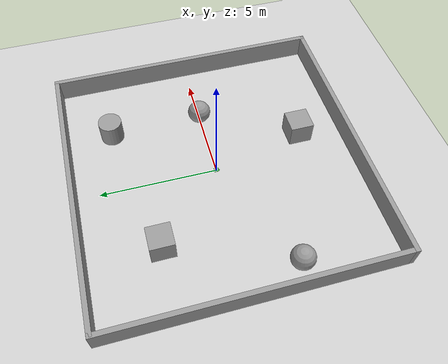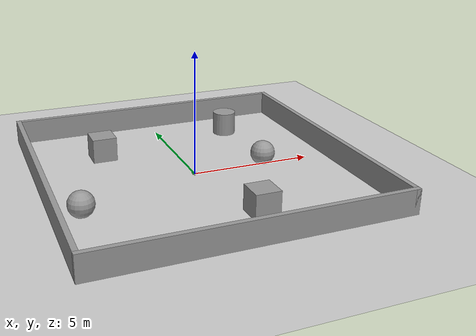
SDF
<sdf version="1.4">
 <world name="default">
  <light name="sun" type="directional">
   <pose>0 0 10 0 -0 0</pose>
   <diffuse>0.8 0.8 0.8 1</diffuse>
   <specular>0.2 0.2 0.2 1</specular>
   <attenuation>
    <range>1000</range>
    <constant>0.9</constant>
    <linear>0.01</linear>
    <quadratic>0.001</quadratic>
   </attenuation>
   <direction>-0.5 0.1 -0.9</direction>
  </light>
  <model name="ground_plane">
   <static>1</static>
   <link name="link">
    <collision name="collision">
     <geometry><plane><normal>0 0 1</normal><size>100 100</size></plane></geometry>
     <surface><friction><ode><mu>100</mu><mu2>50</mu2></ode></friction></surface>
    </collision>
    <visual name="visual">
     <cast_shadows>0</cast_shadows>
     <geometry><plane><normal>0 0 1</normal><size>100 100</size></plane></geometry>
     <material>
      <script><uri>file://media/materials/scripts/gazebo.material</uri><name>Gazebo/Grey</name></script>
     </material>
    </visual>
    <velocity_decay><linear>0</linear><angular>0</angular></velocity_decay>
   </link>
  </model>
  <physics type="ode">
   <max_step_size>0.001</max_step_size>
   <real_time_factor>1</real_time_factor>
   <real_time_update_rate>1000</real_time_update_rate>
   <gravity>0 0 -9.8</gravity>
  </physics>
  <scene><ambient>0.4 0.4 0.4 1</ambient><background>0.7 0.7 0.7 1</background><shadows>1</shadows></scene>
  <spherical_coordinates>
   <surface_model>EARTH_WGS84</surface_model>
   <latitude_deg>0</latitude_deg>
   <longitude_deg>0</longitude_deg>
   <elevation>0</elevation>
   <heading_deg>0</heading_deg>
  </spherical_coordinates>
  <model name="firebird">
   <link name="base_link">
    <inertial>
     <pose>0.00301435 0 0.0010688 0 -0 0</pose>
     <mass>1.045</mass>
     <inertia>
      <ixx>0.0294015</ixx>
      <ixy>0</ixy>
      <ixz>-7.48163e-05</ixz>
      <iyy>0.0296125</iyy>
      <iyz>0</iyz>
      <izz>0.058461</izz>
     </inertia>
    </inertial>
    <collision name="base_link_collision">
     <pose>0 0 0.0375 0 -0 0</pose>
     <geometry><box><size>0.2 0.2 0.01</size></box></geometry>
    </collision>
    <collision name="base_link_collision_caster_link">
     <pose>0.07 0 0.02482 0 -0 0</pose>
     <geometry><cylinder><length>0.01536</length><radius>0.01214</radius></cylinder></geometry>
    </collision>
    <visual name="base_link_visual">
     <pose>0 0 0.0375 0 -0 0</pose>
     <geometry><box><size>0.2 0.2 0.01</size></box></geometry>
     <material><script><name>Gazebo/Green</name><uri>__default__</uri></script></material>
    </visual>
    <visual name="base_link_visual_caster_link">
     <pose>0.07 0 0.02482 0 -0 0</pose>
     <geometry><cylinder><length>0.01536</length><radius>0.01214</radius></cylinder></geometry>
    </visual>
    <visual name="base_link_visual_sharp1">
     <pose>0.07 0 0.050835 0 -0 0</pose>
     <geometry><box><size>0.03333 0.03333 0.01667</size></box></geometry>
     <material><script><name>Gazebo/Blue</name><uri>__default__</uri></script></material>
    </visual>
    <velocity_decay><linear>0</linear><angular>0</angular></velocity_decay>
    <velocity_decay><linear>0</linear><angular>0</angular></velocity_decay>
    <velocity_decay><linear>0</linear><angular>0</angular></velocity_decay>
    <sensor name="sharp_sensor1" type="ray">
     <visualize>1</visualize>
     <update_rate>100</update_rate>
     <ray>
      <scan>
       <horizontal>
        <samples>700</samples>
        <resolution>1</resolution>
        <min_angle>-2.0598</min_angle>
        <max_angle>2.0598</max_angle>
       </horizontal>
      </scan>
      <range><min>0.1</min><max>30</max><resolution>0.01</resolution></range>
     </ray>
     <plugin name="gazebo_ros_head_hokuyo_controller" filename="libgazebo_ros_laser.so">
      <topicName>/scan1</topicName>
      <frameName>sharp1</frameName>
      <robotNamespace>/</robotNamespace>
     </plugin>
     <pose>0.07 0 0.050835 0 -0 0</pose>
    </sensor>
   </link>
   <link name="caster_front_link">
    <pose>0.07 0 0.01714 -1.5708 0 0</pose>
    <inertial>
     <mass>0.02</mass>
     <inertia><ixx>0.001</ixx><ixy>0</ixy><ixz>0</ixz><iyy>0.001</iyy><iyz>0</iyz><izz>0.001</izz></inertia>
    </inertial>
    <collision name="caster_front_link_collision">
     <pose>0 0 0 1.5708 -0 0</pose>
     <geometry><sphere><radius>0.01214</radius></sphere></geometry>
    </collision>
    <visual name="caster_front_link_visual">
     <pose>0 0 0 1.5708 -0 0</pose>
     <geometry><sphere><radius>0.01214</radius></sphere></geometry>
    </visual>
    <velocity_decay><linear>0</linear><angular>0</angular></velocity_decay>
   </link>
   <joint name="caster_front_joint" type="revolute">
    <child>caster_front_link</child>
    <parent>base_link</parent>
    <axis><xyz>1 0 0</xyz><limit><lower>-1e+16</lower><upper>1e+16</upper></limit></axis>
   </joint>
   <link name="left_wheel">
    <pose>-0.04002 -0.115 0.0375 0 -0 0</pose>
    <inertial>
     <mass>0.045</mass>
     <inertia>
      <ixx>0.00108333</ixx>
      <ixy>0</ixy>
      <ixz>0</ixz>
      <iyy>0.00108333</iyy>
      <iyz>0</iyz>
      <izz>0.002</izz>
     </inertia>
    </inertial>
    <collision name="left_wheel_collision">
     <pose>0 0 0 1.5708 -0 0</pose>
     <geometry><cylinder><length>0.03</length><radius>0.0325</radius></cylinder></geometry>
     <surface>
      <contact><ode><kp>100000</kp><kd>1</kd></ode></contact>
      <friction><ode><mu>1</mu><mu2>1</mu2><fdir1>1 0 0</fdir1></ode></friction>
     </surface>
    </collision>
    <visual name="left_wheel_visual">
     <pose>0 0 0 1.5708 -0 0</pose>
     <geometry><cylinder><length>0.03</length><radius>0.0325</radius></cylinder></geometry>
     <material><script><name>Gazebo/Grey</name><uri>__default__</uri></script></material>
    </visual>
    <velocity_decay><linear>0</linear><angular>0</angular></velocity_decay>
   </link>
   <joint name="left_wheel_joint" type="revolute">
    <child>left_wheel</child>
    <parent>base_link</parent>
    <axis><xyz>0 1 0</xyz><limit><lower>-1e+16</lower><upper>1e+16</upper></limit></axis>
   </joint>
   <link name="right_wheel">
    <pose>-0.04002 0.115 0.0375 0 -0 0</pose>
    <inertial>
     <mass>0.045</mass>
     <inertia>
      <ixx>0.00108333</ixx>
      <ixy>0</ixy>
      <ixz>0</ixz>
      <iyy>0.00108333</iyy>
      <iyz>0</iyz>
      <izz>0.002</izz>
     </inertia>
    </inertial>
    <collision name="right_wheel_collision">
     <pose>0 0 0 1.5708 -0 0</pose>
     <geometry><cylinder><length>0.03</length><radius>0.0325</radius></cylinder></geometry>
     <surface>
      <contact><ode><kp>100000</kp><kd>1</kd></ode></contact>
      <friction><ode><mu>1</mu><mu2>1</mu2><fdir1>1 0 0</fdir1></ode></friction>
     </surface>
    </collision>
    <visual name="right_wheel_visual">
     <pose>0 0 0 1.5708 -0 0</pose>
     <geometry><cylinder><length>0.03</length><radius>0.0325</radius></cylinder></geometry>
     <material><script><name>Gazebo/Grey</name><uri>__default__</uri></script></material>
    </visual>
    <velocity_decay><linear>0</linear><angular>0</angular></velocity_decay>
   </link>
   <joint name="right_wheel_joint" type="revolute">
    <child>right_wheel</child>
    <parent>base_link</parent>
    <axis><xyz>0 1 0</xyz><limit><lower>-1e+16</lower><upper>1e+16</upper></limit></axis>
   </joint>
   <static>0</static>
   <plugin name="differential_drive_controller_front" filename="libgazebo_ros_diff_drive.so">
    <rosDebugLevel>Debug</rosDebugLevel>
    <publishWheelTF>True</publishWheelTF>
    <publishTf>1</publishTf>
    <publishWheelJointState>true</publishWheelJointState>
    <alwaysOn>true</alwaysOn>
    <updateRate>100.0</updateRate>
    <leftJoint>left_wheel_joint</leftJoint>
    <rightJoint>right_wheel_joint</rightJoint>
    <wheelSeparation>0.3</wheelSeparation>
    <wheelDiameter>0.065</wheelDiameter>
    <broadcastTF>1</broadcastTF>
    <wheelTorque>30</wheelTorque>
    <wheelAcceleration>1.8</wheelAcceleration>
    <commandTopic>cmd_vel</commandTopic>
    <odometryFrame>odom</odometryFrame>
    <odometryTopic>odom</odometryTopic>
    <robotBaseFrame>base_link</robotBaseFrame>
    <robotNamespace>/</robotNamespace>
   </plugin>
   <pose>0.000337 -5e-06 -0.005027 -8.40267e-24 -0.000368 -0.000123</pose>
  </model>
  <model name="task_1">
   <static>1</static>
   <link name="Wall_16">
    <collision name="Wall_16_Collision">
     <geometry><box><size>12 0.2 1</size></box></geometry>
     <pose>0 0 0.5 0 -0 0</pose>
    </collision>
    <visual name="Wall_16_Visual">
     <pose>0 0 0.5 0 -0 0</pose>
     <geometry><box><size>12 0.2 1</size></box></geometry>
     <material>
      <script><uri>file://media/materials/scripts/gazebo.material</uri><name>Gazebo/Grey</name></script>
     </material>
    </visual>
    <velocity_decay><linear>0</linear><angular>0</angular></velocity_decay>
    <pose>-6 0.1 0 0 0 -1.5708</pose>
   </link>
   <link name="Wall_18">
    <collision name="Wall_18_Collision">
     <geometry><box><size>12.2 0.2 1</size></box></geometry>
     <pose>0 0 0.5 0 -0 0</pose>
    </collision>
    <visual name="Wall_18_Visual">
     <pose>0 0 0.5 0 -0 0</pose>
     <geometry><box><size>12.2 0.2 1</size></box></geometry>
     <material>
      <script><uri>file://media/materials/scripts/gazebo.material</uri><name>Gazebo/Grey</name></script>
     </material>
    </visual>
    <velocity_decay><linear>0</linear><angular>0</angular></velocity_decay>
    <pose>6 0 0 0 -0 1.5708</pose>
   </link>
   <link name="Wall_23">
    <collision name="Wall_23_Collision">
     <geometry><box><size>12 0.2 1</size></box></geometry>
     <pose>0 0 0.5 0 -0 0</pose>
    </collision>
    <visual name="Wall_23_Visual">
     <pose>0 0 0.5 0 -0 0</pose>
     <geometry><box><size>12 0.2 1</size></box></geometry>
     <material>
      <script><uri>file://media/materials/scripts/gazebo.material</uri><name>Gazebo/Grey</name></script>
     </material>
    </visual>
    <velocity_decay><linear>0</linear><angular>0</angular></velocity_decay>
    <pose>-0.050497 6.00163 0 0 -0 0</pose>
   </link>
   <link name="Wall_25">
    <collision name="Wall_25_Collision">
     <geometry><box><size>12.2 0.2 1</size></box></geometry>
     <pose>0 0 0.5 0 -0 0</pose>
    </collision>
    <visual name="Wall_25_Visual">
     <pose>0 0 0.5 0 -0 0</pose>
     <geometry><box><size>12.2 0.2 1</size></box></geometry>
     <material>
      <script><uri>file://media/materials/scripts/gazebo.material</uri><name>Gazebo/Grey</name></script>
     </material>
    </visual>
    <velocity_decay><linear>0</linear><angular>0</angular></velocity_decay>
    <pose>0 -6 0 0 -0 0</pose>
   </link>
   <static>1</static>
  </model>
  <model name="unit_cylinder_2">
   <pose>3 4 0.499992 -1e-06 -0 0</pose>
   <link name="link">
    <inertial>
     <mass>1</mass>
     <inertia><ixx>1</ixx><ixy>0</ixy><ixz>0</ixz><iyy>1</iyy><iyz>0</iyz><izz>1</izz></inertia>
    </inertial>
    <collision name="collision">
     <geometry><cylinder><radius>0.5</radius><length>1</length></cylinder></geometry>
    </collision>
    <visual name="visual">
     <geometry><cylinder><radius>0.5</radius><length>1</length></cylinder></geometry>
     <material>
      <script><uri>file://media/materials/scripts/gazebo.material</uri><name>Gazebo/Grey</name></script>
     </material>
    </visual>
    <velocity_decay><linear>0</linear><angular>0</angular></velocity_decay>
   </link>
   <static>0</static>
  </model>
  <model name="unit_sphere_1">
   <pose>3 0 0.5 0 -0 0</pose>
   <link name="link">
    <inertial>
     <mass>1</mass>
     <inertia><ixx>1</ixx><ixy>0</ixy><ixz>0</ixz><iyy>1</iyy><iyz>0</iyz><izz>1</izz></inertia>
    </inertial>
    <collision name="collision"><geometry><sphere><radius>0.5</radius></sphere></geometry></collision>
    <visual name="visual">
     <geometry><sphere><radius>0.5</radius></sphere></geometry>
     <material>
      <script><uri>file://media/materials/scripts/gazebo.material</uri><name>Gazebo/Grey</name></script>
     </material>
    </visual>
    <velocity_decay><linear>0</linear><angular>0</angular></velocity_decay>
   </link>
   <static>0</static>
  </model>
  <model name="unit_box_2_0">
   <pose>1 -4 0.5 0 -0 0</pose>
   <link name="link">
    <inertial>
     <mass>1</mass>
     <inertia><ixx>1</ixx><ixy>0</ixy><ixz>0</ixz><iyy>1</iyy><iyz>0</iyz><izz>1</izz></inertia>
    </inertial>
    <collision name="collision"><geometry><box><size>1 1 1</size></box></geometry></collision>
    <visual name="visual">
     <geometry><box><size>1 1 1</size></box></geometry>
     <material>
      <script><uri>file://media/materials/scripts/gazebo.material</uri><name>Gazebo/Grey</name></script>
     </material>
    </visual>
    <velocity_decay><linear>0</linear><angular>0</angular></velocity_decay>
   </link>
   <static>0</static>
  </model>
  <model name="unit_sphere_2">
   <pose>-5 -2 0.5 0 -0 0</pose>
   <link name="link">
    <inertial>
     <mass>1</mass>
     <inertia><ixx>1</ixx><ixy>0</ixy><ixz>0</ixz><iyy>1</iyy><iyz>0</iyz><izz>1</izz></inertia>
    </inertial>
    <collision name="collision"><geometry><sphere><radius>0.5</radius></sphere></geometry></collision>
    <visual name="visual">
     <geometry><sphere><radius>0.5</radius></sphere></geometry>
     <material>
      <script><uri>file://media/materials/scripts/gazebo.material</uri><name>Gazebo/Grey</name></script>
     </material>
    </visual>
    <velocity_decay><linear>0</linear><angular>0</angular></velocity_decay>
   </link>
   <static>0</static>
  </model>
  <model name="unit_box_3_0">
   <pose>-3 3 0.5 0 -0 0</pose>
   <link name="link">
    <inertial>
     <mass>1</mass>
     <inertia><ixx>1</ixx><ixy>0</ixy><ixz>0</ixz><iyy>1</iyy><iyz>0</iyz><izz>1</izz></inertia>
    </inertial>
    <collision name="collision"><geometry><box><size>1 1 1</size></box></geometry></collision>
    <visual name="visual">
     <geometry><box><size>1 1 1</size></box></geometry>
     <material>
      <script><uri>file://media/materials/scripts/gazebo.material</uri><name>Gazebo/Grey</name></script>
     </material>
    </visual>
    <velocity_decay><linear>0</linear><angular>0</angular></velocity_decay>
   </link>
   <static>0</static>
  </model>
 </world>
</sdf>
